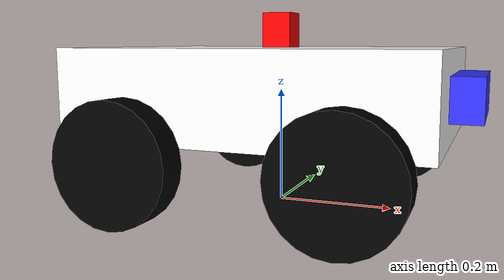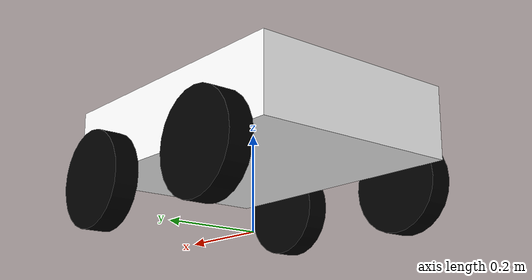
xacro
<?xml version="1.0"?>
<robot xmlns:xacro="http://www.ros.org/wiki/xacro" name="myrobot">

  <xacro:include filename="$(find robot_description_pkg)/urdf/material.xacro"/>

<link name="base_link"/>

<joint name="chassis_joint" type="fixed">
  <parent link="base_link"/>
  <child link="chassis"/>
  <origin xyz="0 0 0" rpy="0 0 0"/>
  <axis xyz="0 0 0"/>
</joint>

  <!-- CHASSIS LINK -->
  <link name="chassis">
        <inertial>
            <origin xyz="0.0 0.0 0.0"/>
            <mass value="20"/>
            <inertia ixx="0.1" ixy="0.0" ixz="0.0" iyy="0.1" iyz="0.0" izz="0.1"/>
        </inertial>
        <visual>
            <origin xyz="0.0 0.0 0.2" />
            <geometry>
                <box size="0.6 0.45 0.15"/>
            </geometry>
            <material name="white"/>
        </visual>
        <collision>
            <origin xyz="0.0 0.0 0.2" rpy="0.0 0.0 0.0"/>
            <geometry>
                <box size="0.6 0.45 0.15"/>
            </geometry>
        </collision>
  </link>

  <!-- FRONT LEFT WHEEL LINK   -->
  <link name="front_left_wheel">
    <inertial>
      <origin rpy="0 0 0 " xyz="0 0 0"/>
      <mass value="0.7"/>
      <inertia ixx="0.1" ixy="0" ixz="0" iyy="0.1" iyz="0" izz="0.1"/>
    </inertial>
    <collision name="front_left_wheel_collision">
      <origin rpy="0 1.5707 1.5707" xyz="0 0 0" />
      <geometry>
        <cylinder length="0.05" radius="0.1"/>
      </geometry>
    </collision>
    <visual name="front_left_wheel_visual">
      <origin rpy="0 1.5707 1.5707" xyz="0 0 0"/>
      <geometry>
        <cylinder length="0.05" radius="0.1"/>
      </geometry>
      <material name="Black"/>
    </visual>
  </link>
  <joint name="joint_front_left_wheel" type="continuous">
    <origin rpy="0 0 0" xyz="0.175 0.25 0.1"/>
    <child link="front_left_wheel" />
    <parent link="chassis"/>
    <axis rpy="0 0 0" xyz="0 1 0"/>
  </joint>

  <!-- BACk LEFT WHEEL LINK    -->
  <link name="back_left_wheel">
    <inertial>
      <mass value="0.7"/>
      <origin rpy="0 0 0" xyz="0 0 0"/>
      <inertia ixx="0.1" ixy="0" ixz="0" iyy="0.1" iyz="0" izz="0.1"/>
    </inertial>
    <collision name="back_left_wheel_collision">
      <origin rpy="0 1.5707 1.5707" xyz="0 0 0" />
      <geometry>
        <cylinder length="0.05" radius="0.1"/>
      </geometry>
    </collision>
    <visual name="back_left_wheel_visual">
      <origin rpy="0 1.5707 1.5707" xyz="0 0 0"/>
      <geometry>
        <cylinder length="0.05" radius="0.1"/>
      </geometry>
      <material name="Black"/>
    </visual>
  </link>
  <joint name="joint_back_left_wheel" type="continuous">
    <origin rpy="0 0 0" xyz="-0.175 0.25 0.1"/>
    <child link="back_left_wheel" />
    <parent link="chassis"/>
    <axis rpy="0 0 0" xyz="0 1 0"/>
  </joint>

  <!-- FRONT RIGHT WHEEL LINK   -->
  <link name="front_right_wheel">
    <inertial>
      <mass value="0.7"/>
      <origin rpy="0 0 0" xyz="0 0 0"/>
      <inertia ixx="0.1" ixy="0" ixz="0" iyy="0.1" iyz="0" izz="0.1"/>
    </inertial>
    <collision name="front_right_wheel_collision">
      <origin rpy="0 1.5707 1.5707" xyz="0 0 0" />
      <geometry>
        <cylinder length="0.05" radius="0.1"/>
      </geometry>
    </collision>
    <visual name="front_right_wheel_visual">
      <origin rpy="0 1.5707 1.5707" xyz="0 0 0"/>
      <geometry>
        <cylinder length="0.05" radius="0.1"/>
      </geometry>
      <material name="Black"/>
    </visual>
  </link>
  <joint name="joint_front_right_wheel" type="continuous">
    <origin rpy="0 0 0" xyz="0.175 -0.25 0.10"/>
    <child link="front_right_wheel" />
    <parent link="chassis"/>
    <axis rpy="0 0 0" xyz="0 1 0"/>
  </joint>

<!-- BACk RIGHT WHEEL LINK    -->
  <link name="back_right_wheel">
    <inertial>
      <mass value="0.7"/>
      <origin rpy="0 0 0" xyz="0 0 0"/>
      <inertia ixx="0.1" ixy="0" ixz="0" iyy="0.1" iyz="0" izz="0.1"/>
    </inertial>
    <collision name="back_right_wheel_collision">
      <origin rpy="0 1.5707 1.5707" xyz="0 0 0" />
      <geometry>
        <cylinder length="0.05" radius="0.1"/>
      </geometry>
    </collision>
    <visual name="back_right_wheel_visual">
      <origin rpy="0 1.5707 1.5707" xyz="0 0 0"/>
      <geometry>
        <cylinder length="0.05" radius="0.1"/>
      </geometry>
      <material name="Black"/>
    </visual>
  </link>
  <joint name="joint_back_right_wheel" type="continuous">
    <origin rpy="0 0 0" xyz="-0.175 -0.25 0.10"/>
    <child link="back_right_wheel" />
    <parent link="chassis"/>
    <axis rpy="0 0 0" xyz="0 1 0"/>
  </joint>

    <!-- CAMERA LINK -->
    <link name="camera">
        <inertial>
            <origin xyz="0.0 0.0 0.0" rpy="0.0 0.0 0.0"/>
            <mass value="0.9"/>
            <inertia ixx="0.1" ixy="0.0" ixz="0.0" iyy="0.1" iyz="0.0" izz="0.1"/>
        </inertial>
        <visual >
            <origin xyz="0.0 0.0 0.0" rpy="0 0 0"/>
            <geometry>
                <box size="0.050 0.20 0.07"/>
            </geometry>
            <material name="Blue"/>
        </visual>
        <collision>
           <origin xyz="0.0 0.0 0.0" rpy="0 0 0"/>
            <geometry>
                <box size="0.050 0.20 0.07"/>
            </geometry>
        </collision>
    </link>
    <joint name="camera_link_joint" type="fixed">
        <origin xyz="0.325 0.0 0.2" rpy="0.0 0.0 0.0"/>
        <parent link="chassis"/>
        <child link="camera"/>
        <axis xyz="0.0 0.0 0.0"/>
    </joint>

   <link name="lidar">
    <inertial>
      <origin xyz="0.0 0.0 0.0" rpy="0.0 0.0 0.0"/>
      <mass value="1.0"/>
      <inertia ixx="0.10" ixy="0.0" ixz="0.0" iyy="0.10" iyz="0.0" izz="0.10"/>
    </inertial>
    <visual name="">
      <origin xyz="0.0 0.0 0.0" rpy="0.0 0.0 0.0"/>
      <geometry>
       <box size="0.050 0.050 0.07"/>
      </geometry>
      <material name="">
        <color rgba="1.0 0.0 0.0 1.0"/>
        <texture filename=""/>
      </material>
    </visual>
    <collision>
      <origin xyz="0.0 0.0 0.0" rpy="0.0 0.0 0.0"/>
      <geometry>
        <box size="0.050 0.050 0.07"/>
      </geometry>
    </collision>
   </link>
   <joint name="joint_lidar" type="fixed">
    <origin xyz="0.0 0.0 0.3" rpy="0.0 0.0 0.0"/>
    <parent link="chassis"/>
    <child link="lidar"/>
   </joint>

  <gazebo>
      <plugin name='skid_steer_drive' filename='libgazebo_ros_diff_drive.so'>

        <num_wheel_pairs>2</num_wheel_pairs>

        <left_joint>joint_front_left_wheel</left_joint>
        <right_joint>joint_front_right_wheel</right_joint>

        <left_joint>joint_back_left_wheel</left_joint>
        <right_joint>joint_back_right_wheel</right_joint>

        <wheel_separation>0.5</wheel_separation>
        <wheel_separation>0.5</wheel_separation>
        <wheel_diameter>0.2</wheel_diameter>
        <wheel_diameter>0.2</wheel_diameter>

        <updateRate>100</updateRate>
        <max_wheel_acceleration>1.0</max_wheel_acceleration>
        <max_wheel_torque>20</max_wheel_torque>

        <robot_base_frame>base_link</robot_base_frame>
        <publish_odom>true</publish_odom>
        <publish_odom_tf>true</publish_odom_tf>
        <publish_wheel_tf>true</publish_wheel_tf>
        <odometry_frame>odom</odometry_frame>
        <odometry_source>world</odometry_source>
      </plugin>
    </gazebo>
         <!-- LIDER -->
    <gazebo reference="lidar">
        <sensor type="ray" name="head_hokuyo_sensor">
            <pose>0 0 0 0 0 0</pose>
            <visualize>true</visualize>
            <update_rate>40</update_rate>
            <ray>
                <scan>
                    <horizontal>
                        <samples>780</samples>
                        <resolution>1</resolution>
                        <min_angle>-1.570796327</min_angle>
                        <max_angle>1.570796327</max_angle>
                    </horizontal>
                </scan>
                <range>
                    <min>0.10</min>
                    <max>30.0</max>
                    <resolution>0.01</resolution>
                </range>
                <noise>
                    <type>gaussian</type>
                    <mean>0.0</mean>
                    <stddev>0.01</stddev>
                </noise>
            </ray>
            <plugin name="lidar_controller" filename="libgazebo_ros_ray_sensor.so">
                <ros>
                    <remapping>~/out:=scan</remapping>
                </ros>
                <output_type>sensor_msgs/LaserScan</output_type>
                <topicName>/scan</topicName>
                <frameName>lidar</frameName>
            </plugin>
        </sensor>
    </gazebo>

</robot>

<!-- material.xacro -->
<robot xmlns:xacro="http://www.ros.org/wiki/xacro" name="myrobot">

    <material  name="white">
        <color rgba="1 1 1 1"/>
    </material>

    <material  name="Blue">
        <color rgba="0.2 0.2 1 1"/>
    </material>

    <material  name="Red">
        <color rgba="0.8 0.0 0.0 1.0"/>
    </material>

    <material  name="Black">
        <color rgba="0 0 0 1"/>
    </material>

</robot>
